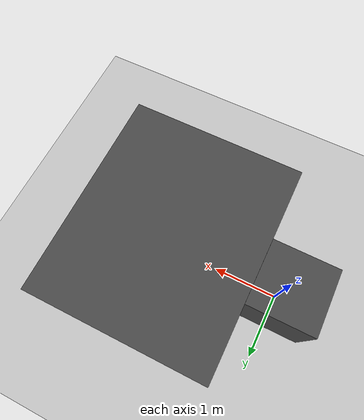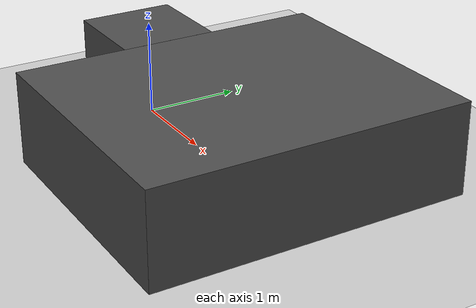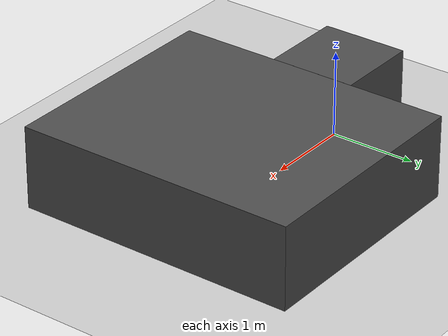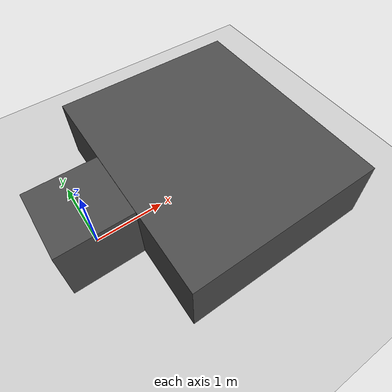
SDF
<sdf version="1.6">
 <world name="default">
  <plugin name="xbot2_clock" filename="libxbot2_gz_clock.so"/>
  <gravity>0 0 -9.81</gravity>
  <model name="ground_plane">
   <static>1</static>
   <link name="link">
    <collision name="collision">
     <geometry><plane><normal>0 0 1</normal><size>100 100</size></plane></geometry>
     <surface><friction><ode><mu>1</mu><mu2>1</mu2></ode></friction></surface>
    </collision>
    <visual name="visual">
     <cast_shadows>0</cast_shadows>
     <geometry><plane><normal>0 0 1</normal><size>100 100</size></plane></geometry>
     <material>
      <script><uri>file://media/materials/scripts/gazebo.material</uri><name>Gazebo/Grey</name></script>
     </material>
    </visual>
   </link>
  </model>
  <light name="sun" type="directional">
   <pose>0 0 10 0 -0 0</pose>
   <diffuse>0.8 0.8 0.8 1</diffuse>
   <specular>0.2 0.2 0.2 1</specular>
   <attenuation>
    <range>1000</range>
    <constant>0.9</constant>
    <linear>0.01</linear>
    <quadratic>0.001</quadratic>
   </attenuation>
   <direction>-0.5 0.1 -0.9</direction>
  </light>
  <physics name="update_rate" default="0" type="ode">
   <real_time_update_rate>2000</real_time_update_rate>
   <max_step_size>0.0005</max_step_size>
   <max_contacts>5</max_contacts>
   <bullet>
    <solver><iters>100</iters><sor>1.55</sor><type>sequential_impulse</type></solver>
    <constraints>
     <contact_surface_layer>0.2</contact_surface_layer>
     <cfm>0.005</cfm>
     <erp>0.2</erp>
     <split_impulse>1</split_impulse>
     <split_impulse_penetration_threshold>-0.01</split_impulse_penetration_threshold>
    </constraints>
   </bullet>
   <ode>
    <solver>
     <iters>50</iters>
     <sor>1.2</sor>
     <type>quick</type>
     <use_dynamic_moi_rescaling>0</use_dynamic_moi_rescaling>
    </solver>
    <constraints>
     <contact_surface_layer>0.0002</contact_surface_layer>
     <contact_max_correcting_vel>500</contact_max_correcting_vel>
     <cfm>1e-06</cfm>
     <erp>0.3</erp>
    </constraints>
   </ode>
   <real_time_factor>1</real_time_factor>
  </physics>
  <magnetic_field>6e-06 2.3e-05 -4.2e-05</magnetic_field>
  <atmosphere type="adiabatic"/>
  <scene><ambient>0.4 0.4 0.4 1</ambient><background>0.7 0.7 0.7 1</background><shadows>1</shadows></scene>
  <audio><device>default</device></audio>
  <spherical_coordinates>
   <surface_model>EARTH_WGS84</surface_model>
   <latitude_deg>0</latitude_deg>
   <longitude_deg>0</longitude_deg>
   <elevation>0</elevation>
   <heading_deg>0</heading_deg>
  </spherical_coordinates>
  <model name="arm_support">
   <pose>-0.050051 0.001909 0.477228 0 -0 0</pose>
   <link name="arm_support_link">
    <inertial>
     <mass>1</mass>
     <inertia>
      <ixx>0.166667</ixx>
      <ixy>0</ixy>
      <ixz>0</ixz>
      <iyy>0.166667</iyy>
      <iyz>0</iyz>
      <izz>0.166667</izz>
     </inertia>
    </inertial>
    <collision name="arm_support_collision"><geometry><box><size>1 1 0.954457</size></box></geometry></collision>
    <visual name="arm_support_visual">
     <geometry><box><size>1 1 0.954457</size></box></geometry>
     <material>
      <script><name>Gazebo/DarkGrey</name><uri>file://media/materials/scripts/gazebo.material</uri></script>
     </material>
    </visual>
    <kinematic>1</kinematic>
   </link>
  </model>
  <model name="frictionless_surface">
   <pose>1.81638 -0.005908 0.477228 0 -0 0</pose>
   <link name="frictionless_surface_link">
    <inertial>
     <mass>1</mass>
     <inertia>
      <ixx>0.166667</ixx>
      <ixy>0</ixy>
      <ixz>0</ixz>
      <iyy>0.166667</iyy>
      <iyz>0</iyz>
      <izz>0.166667</izz>
     </inertia>
    </inertial>
    <collision name="frictionless_surface_collision">
     <geometry><box><size>2.73231 3.2755 0.954457</size></box></geometry>
    </collision>
    <visual name="frictionless_surface_visual">
     <geometry><box><size>2.73231 3.2755 0.954457</size></box></geometry>
     <material>
      <script><name>Gazebo/DarkGrey</name><uri>file://media/materials/scripts/gazebo.material</uri></script>
     </material>
    </visual>
    <kinematic>1</kinematic>
   </link>
  </model>
 </world>
</sdf>
